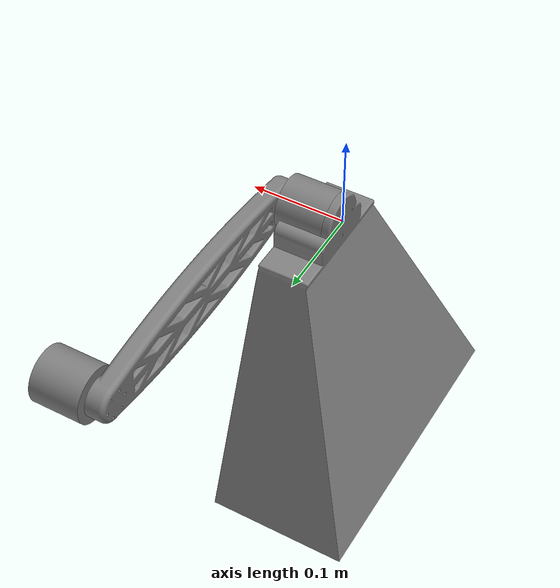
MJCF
<mujoco model="2DofArm">
    <default>
        <geom type="mesh" xyaxes="1 0 0 0 1 0"/>
    </default>
    <option timestep = "0.001"/>
    <asset>
        <mesh name="Arm" file="Arm.stl" scale="0.001 0.001 0.001"/>
        <mesh name="ArmMotor" file="ArmMotor.stl" scale="0.001 0.001 0.001"/>
        <mesh name="BaseMotor" file="BaseMotor.stl" scale="0.001 0.001 0.001"/>
        <mesh name="MujocoBase" file="MujocoBase.stl" scale="0.001 0.001 0.001"/>
    </asset>
    <worldbody>
        <body name="MujocoBase">
            <geom mass = "100" mesh="MujocoBase"/>
            <body name="BaseMotor">
                <geom mass = "0.362" mesh="BaseMotor"/>
                <body name="Arm">
                    <joint name="joint_1" pos="0 0 0" axis="1 0 0" limited="false"/>
                    <geom mass = "0" mesh="Arm"/>
                    <body name="ArmMotor">
                        <geom mass = "0.362" mesh="ArmMotor"/>
                    </body>
                </body>
            </body>
        </body>
    </worldbody>
    <actuator>
        <motor name="joint_1_torque" joint="joint_1" ctrllimited="true" ctrlrange="-9 9"/>
    </actuator>
    <contact>
        <exclude body1 = "Arm" body2 = "BaseMotor"/>
    </contact>
</mujoco>
